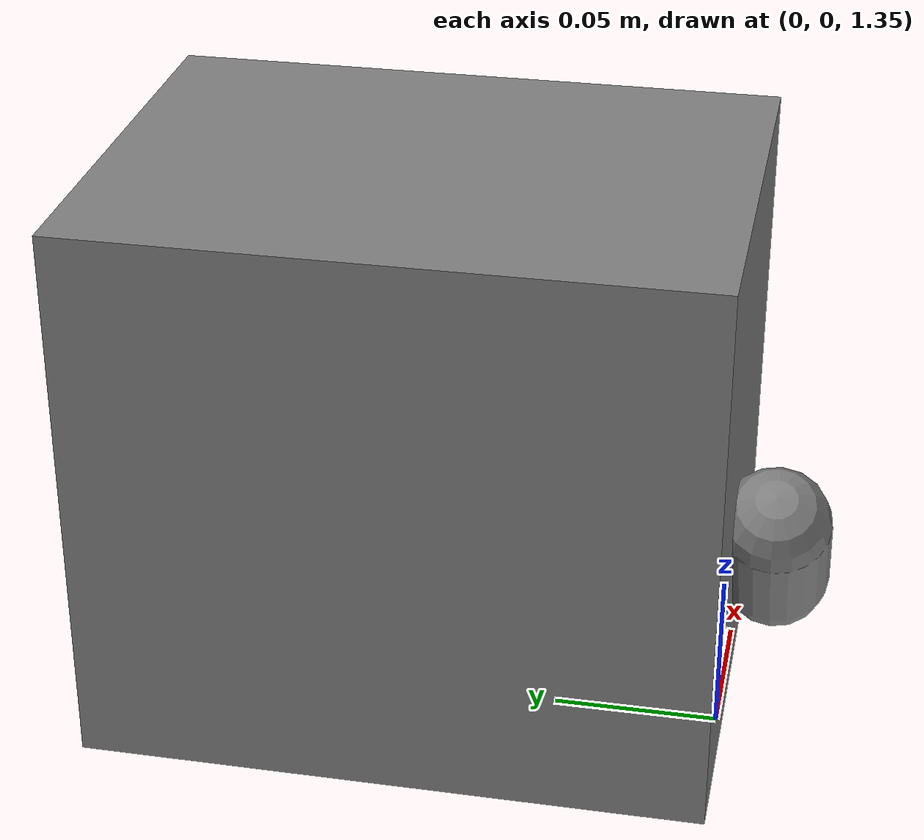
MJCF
<mujoco model="oswald">
    <compiler inertiafromgeom="true" angle="degree" coordinates="global" />

    <worldbody>
        <body name="body" pos="0 0 0">
            <geom name='body' type='box' pos='0.0531 0.1 1.41625'  size='0.075 0.1 0.09' />
            <body name="right_recip" pos="0 0 0 ">
                <geom name="right_recip" type="capsule" fromto="0.0381 -0.0125 1.40005 0.059101 -0.0125 1.36826" size="0.0175" />
                <joint name="left_recip_y" type="hinge" pos="0.0381 -0.0125 1.40005" axis="0 1 0" range="-180 180"/>
            </body>
        </body>
    </worldbody>
</mujoco>
